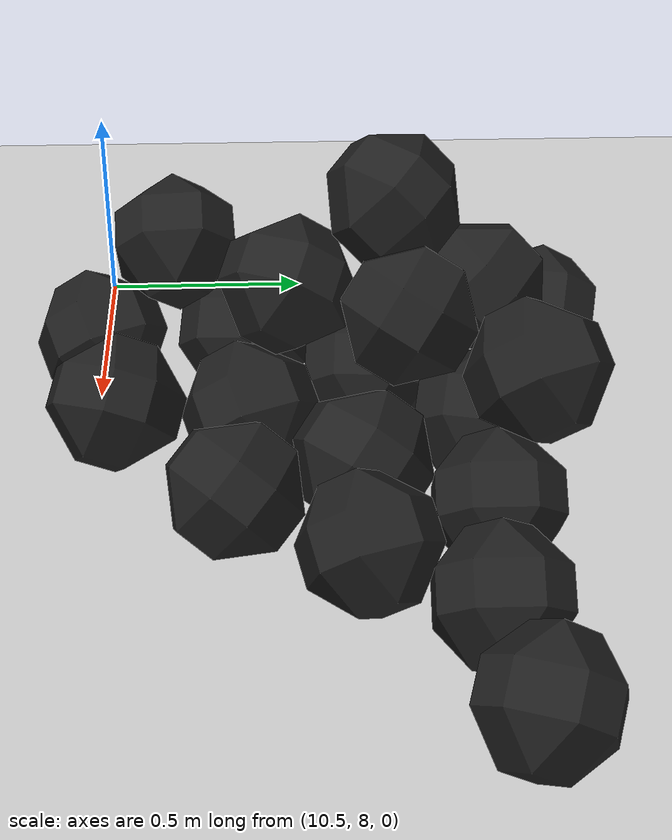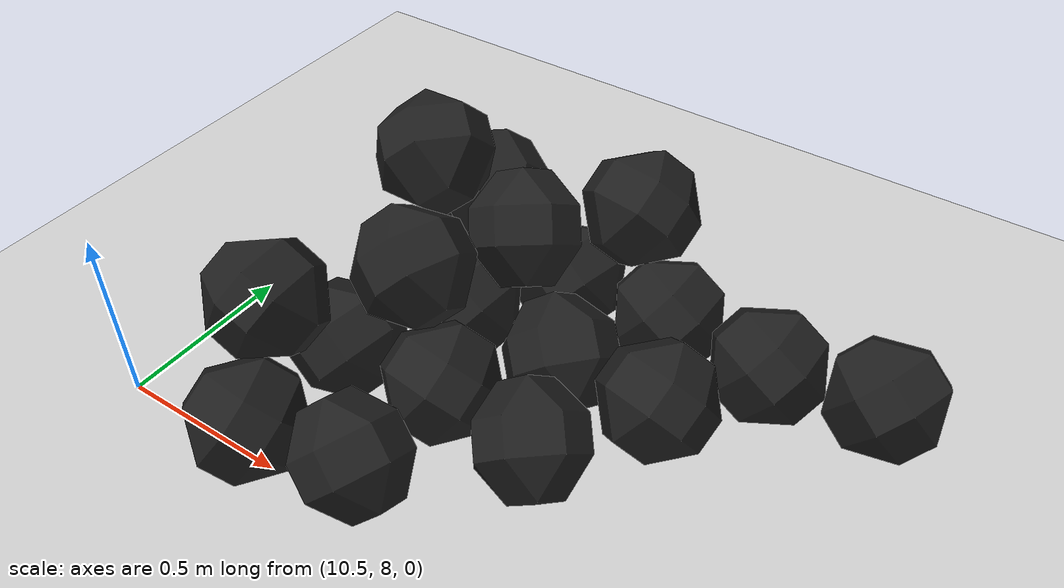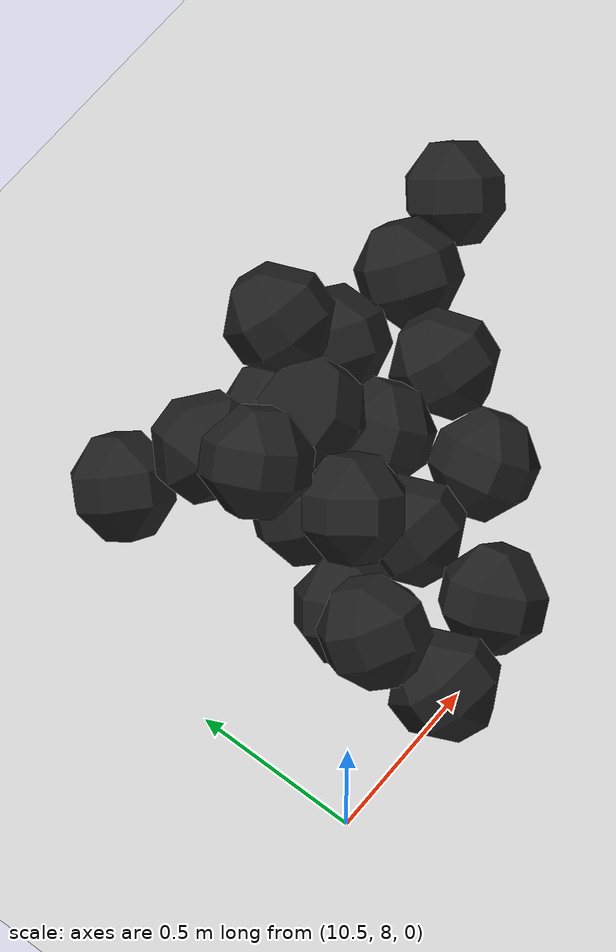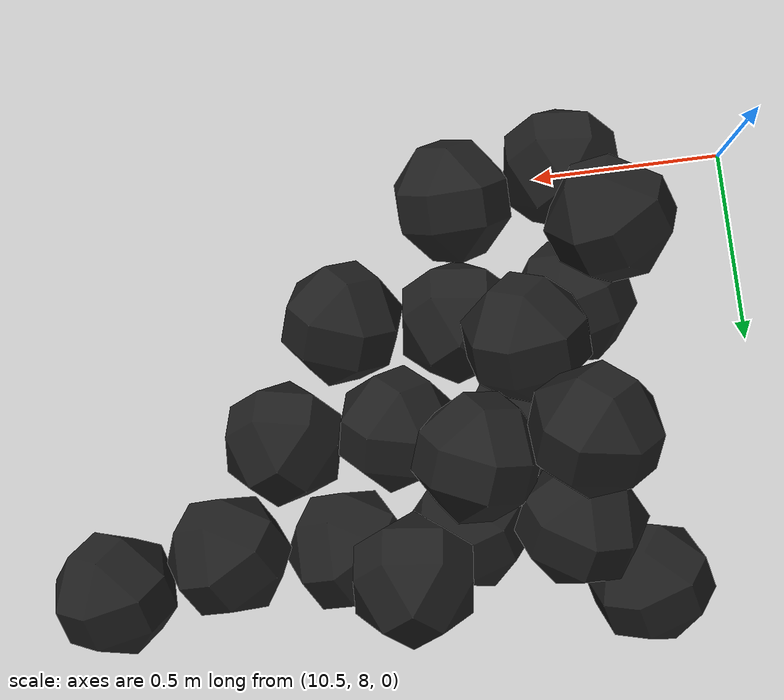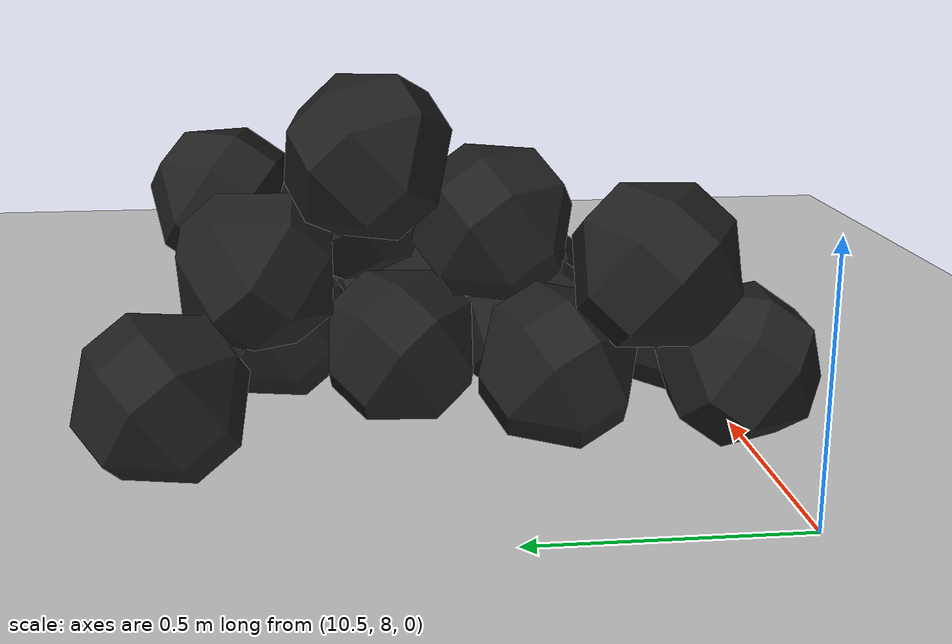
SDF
<sdf version="1.7">
 <world name="default">
  <model name="ground_plane">
   <static>1</static>
   <link name="link">
    <collision name="collision">
     <geometry><plane><normal>0 0 1</normal><size>100 100</size></plane></geometry>
     <surface><friction><ode><mu>100</mu><mu2>50</mu2></ode></friction></surface>
    </collision>
    <visual name="visual">
     <cast_shadows>0</cast_shadows>
     <geometry><plane><normal>0 0 1</normal><size>100 100</size></plane></geometry>
     <material>
      <script><uri>file://media/materials/scripts/gazebo.material</uri><name>Gazebo/Grey</name></script>
     </material>
    </visual>
   </link>
  </model>
  <model name="haoduomiantiaa_0">
   <link name="link_0">
    <inertial>
     <mass>0.2</mass>
     <inertia>
      <ixx>0.166667</ixx>
      <ixy>0</ixy>
      <ixz>0</ixz>
      <iyy>0.166667</iyy>
      <iyz>0</iyz>
      <izz>0.166667</izz>
     </inertia>
    </inertial>
    <visual name="visual">
     <geometry>
      <mesh>
       <uri>/home/lihaoyang/catkin_ws/src/pudong_gazebo/world/stl/haoduomianti.stl</uri>
       <scale>1 1 1</scale>
      </mesh>
     </geometry>
     <material>
      <lighting>1</lighting>
      <script><uri>file://media/materials/scripts/gazebo.material</uri><name>Gazebo/Black</name></script>
      <shader type="pixel"><normal_map>__default__</normal_map></shader>
      <ambient>0.3 0.3 0.3 1</ambient>
      <diffuse>0.7 0.7 0.7 1</diffuse>
      <specular>0.01 0.01 0.01 1</specular>
      <emissive>0 0 0 1</emissive>
     </material>
    </visual>
    <collision name="collision">
     <geometry>
      <mesh>
       <uri>/home/lihaoyang/catkin_ws/src/pudong_gazebo/world/stl/haoduomianti.stl</uri>
       <scale>1 1 1</scale>
      </mesh>
     </geometry>
     <surface>
      <friction>
       <ode><mu>1</mu><mu2>1</mu2><fdir1>0 0 0</fdir1><slip1>0</slip1><slip2>0</slip2></ode>
       <torsional>
        <coefficient>1</coefficient>
        <patch_radius>0</patch_radius>
        <surface_radius>0</surface_radius>
        <use_patch_radius>1</use_patch_radius>
        <ode><slip>0</slip></ode>
       </torsional>
      </friction>
      <bounce><restitution_coefficient>0</restitution_coefficient><threshold>1e+06</threshold></bounce>
      <contact>
       <collide_without_contact>0</collide_without_contact>
       <collide_without_contact_bitmask>1</collide_without_contact_bitmask>
       <collide_bitmask>1</collide_bitmask>
       <ode>
        <soft_cfm>0</soft_cfm>
        <soft_erp>0.2</soft_erp>
        <kp>1e+13</kp>
        <kd>1</kd>
        <max_vel>0.01</max_vel>
        <min_depth>0</min_depth>
       </ode>
       <bullet>
        <split_impulse>1</split_impulse>
        <split_impulse_penetration_threshold>-0.01</split_impulse_penetration_threshold>
        <soft_cfm>0</soft_cfm>
        <soft_erp>0.2</soft_erp>
        <kp>1e+13</kp>
        <kd>1</kd>
       </bullet>
      </contact>
     </surface>
    </collision>
   </link>
   <static>0</static>
   <pose>10.8647 9.09379 -0.115476 0.785212 -0.615494 -1.26195</pose>
  </model>
  <model name="haoduomiantiaa_3">
   <link name="link_0">
    <inertial>
     <mass>0.2</mass>
     <inertia>
      <ixx>0.166667</ixx>
      <ixy>0</ixy>
      <ixz>0</ixz>
      <iyy>0.166667</iyy>
      <iyz>0</iyz>
      <izz>0.166667</izz>
     </inertia>
    </inertial>
    <visual name="visual">
     <geometry>
      <mesh>
       <uri>/home/lihaoyang/catkin_ws/src/pudong_gazebo/world/stl/haoduomianti.stl</uri>
       <scale>1 1 1</scale>
      </mesh>
     </geometry>
     <material>
      <lighting>1</lighting>
      <script><uri>file://media/materials/scripts/gazebo.material</uri><name>Gazebo/Black</name></script>
      <shader type="pixel"><normal_map>__default__</normal_map></shader>
      <ambient>0.3 0.3 0.3 1</ambient>
      <diffuse>0.7 0.7 0.7 1</diffuse>
      <specular>0.01 0.01 0.01 1</specular>
      <emissive>0 0 0 1</emissive>
     </material>
    </visual>
    <collision name="collision">
     <geometry>
      <mesh>
       <uri>/home/lihaoyang/catkin_ws/src/pudong_gazebo/world/stl/haoduomianti.stl</uri>
       <scale>1 1 1</scale>
      </mesh>
     </geometry>
     <surface>
      <friction>
       <ode><mu>1</mu><mu2>1</mu2><fdir1>0 0 0</fdir1><slip1>0</slip1><slip2>0</slip2></ode>
       <torsional>
        <coefficient>1</coefficient>
        <patch_radius>0</patch_radius>
        <surface_radius>0</surface_radius>
        <use_patch_radius>1</use_patch_radius>
        <ode><slip>0</slip></ode>
       </torsional>
      </friction>
      <bounce><restitution_coefficient>0</restitution_coefficient><threshold>1e+06</threshold></bounce>
      <contact>
       <collide_without_contact>0</collide_without_contact>
       <collide_without_contact_bitmask>1</collide_without_contact_bitmask>
       <collide_bitmask>1</collide_bitmask>
       <ode>
        <soft_cfm>0</soft_cfm>
        <soft_erp>0.2</soft_erp>
        <kp>1e+13</kp>
        <kd>1</kd>
        <max_vel>0.01</max_vel>
        <min_depth>0</min_depth>
       </ode>
       <bullet>
        <split_impulse>1</split_impulse>
        <split_impulse_penetration_threshold>-0.01</split_impulse_penetration_threshold>
        <soft_cfm>0</soft_cfm>
        <soft_erp>0.2</soft_erp>
        <kp>1e+13</kp>
        <kd>1</kd>
       </bullet>
      </contact>
     </surface>
    </collision>
   </link>
   <static>0</static>
   <pose>10.9475 8.39888 -0.107146 0.785552 -0.449777 -1.29732</pose>
  </model>
  <model name="haoduomiantiaa_5">
   <link name="link_0">
    <inertial>
     <mass>0.2</mass>
     <inertia>
      <ixx>0.166667</ixx>
      <ixy>0</ixy>
      <ixz>0</ixz>
      <iyy>0.166667</iyy>
      <iyz>0</iyz>
      <izz>0.166667</izz>
     </inertia>
    </inertial>
    <visual name="visual">
     <geometry>
      <mesh>
       <uri>/home/lihaoyang/catkin_ws/src/pudong_gazebo/world/stl/haoduomianti.stl</uri>
       <scale>1 1 1</scale>
      </mesh>
     </geometry>
     <material>
      <lighting>1</lighting>
      <script><uri>file://media/materials/scripts/gazebo.material</uri><name>Gazebo/Black</name></script>
      <shader type="pixel"><normal_map>__default__</normal_map></shader>
      <ambient>0.3 0.3 0.3 1</ambient>
      <diffuse>0.7 0.7 0.7 1</diffuse>
      <specular>0.01 0.01 0.01 1</specular>
      <emissive>0 0 0 1</emissive>
     </material>
    </visual>
    <collision name="collision">
     <geometry>
      <mesh>
       <uri>/home/lihaoyang/catkin_ws/src/pudong_gazebo/world/stl/haoduomianti.stl</uri>
       <scale>1 1 1</scale>
      </mesh>
     </geometry>
     <surface>
      <friction>
       <ode><mu>1</mu><mu2>1</mu2><fdir1>0 0 0</fdir1><slip1>0</slip1><slip2>0</slip2></ode>
       <torsional>
        <coefficient>1</coefficient>
        <patch_radius>0</patch_radius>
        <surface_radius>0</surface_radius>
        <use_patch_radius>1</use_patch_radius>
        <ode><slip>0</slip></ode>
       </torsional>
      </friction>
      <bounce><restitution_coefficient>0</restitution_coefficient><threshold>1e+06</threshold></bounce>
      <contact>
       <collide_without_contact>0</collide_without_contact>
       <collide_without_contact_bitmask>1</collide_without_contact_bitmask>
       <collide_bitmask>1</collide_bitmask>
       <ode>
        <soft_cfm>0</soft_cfm>
        <soft_erp>0.2</soft_erp>
        <kp>1e+13</kp>
        <kd>1</kd>
        <max_vel>0.01</max_vel>
        <min_depth>0</min_depth>
       </ode>
       <bullet>
        <split_impulse>1</split_impulse>
        <split_impulse_penetration_threshold>-0.01</split_impulse_penetration_threshold>
        <soft_cfm>0</soft_cfm>
        <soft_erp>0.2</soft_erp>
        <kp>1e+13</kp>
        <kd>1</kd>
       </bullet>
      </contact>
     </surface>
    </collision>
   </link>
   <static>0</static>
   <pose>11.4515 9.00337 0.124834 0.780246 -0.643178 -2.73617</pose>
  </model>
  <model name="haoduomiantiaa_10">
   <link name="link_0">
    <inertial>
     <mass>0.2</mass>
     <inertia>
      <ixx>0.166667</ixx>
      <ixy>0</ixy>
      <ixz>0</ixz>
      <iyy>0.166667</iyy>
      <iyz>0</iyz>
      <izz>0.166667</izz>
     </inertia>
    </inertial>
    <visual name="visual">
     <geometry>
      <mesh>
       <uri>/home/lihaoyang/catkin_ws/src/pudong_gazebo/world/stl/haoduomianti.stl</uri>
       <scale>1 1 1</scale>
      </mesh>
     </geometry>
     <material>
      <lighting>1</lighting>
      <script><uri>file://media/materials/scripts/gazebo.material</uri><name>Gazebo/Black</name></script>
      <shader type="pixel"><normal_map>__default__</normal_map></shader>
      <ambient>0.3 0.3 0.3 1</ambient>
      <diffuse>0.7 0.7 0.7 1</diffuse>
      <specular>0.01 0.01 0.01 1</specular>
      <emissive>0 0 0 1</emissive>
     </material>
    </visual>
    <collision name="collision">
     <geometry>
      <mesh>
       <uri>/home/lihaoyang/catkin_ws/src/pudong_gazebo/world/stl/haoduomianti.stl</uri>
       <scale>1 1 1</scale>
      </mesh>
     </geometry>
     <surface>
      <friction>
       <ode><mu>1</mu><mu2>1</mu2><fdir1>0 0 0</fdir1><slip1>0</slip1><slip2>0</slip2></ode>
       <torsional>
        <coefficient>1</coefficient>
        <patch_radius>0</patch_radius>
        <surface_radius>0</surface_radius>
        <use_patch_radius>1</use_patch_radius>
        <ode><slip>0</slip></ode>
       </torsional>
      </friction>
      <bounce><restitution_coefficient>0</restitution_coefficient><threshold>1e+06</threshold></bounce>
      <contact>
       <collide_without_contact>0</collide_without_contact>
       <collide_without_contact_bitmask>1</collide_without_contact_bitmask>
       <collide_bitmask>1</collide_bitmask>
       <ode>
        <soft_cfm>0</soft_cfm>
        <soft_erp>0.2</soft_erp>
        <kp>1e+13</kp>
        <kd>1</kd>
        <max_vel>0.01</max_vel>
        <min_depth>0</min_depth>
       </ode>
       <bullet>
        <split_impulse>1</split_impulse>
        <split_impulse_penetration_threshold>-0.01</split_impulse_penetration_threshold>
        <soft_cfm>0</soft_cfm>
        <soft_erp>0.2</soft_erp>
        <kp>1e+13</kp>
        <kd>1</kd>
       </bullet>
      </contact>
     </surface>
    </collision>
   </link>
   <static>0</static>
   <pose>11.5562 8.3401 -0.115455 0.785112 -0.615449 -1.91731</pose>
  </model>
  <model name="haoduomiantiaa_14">
   <link name="link_0">
    <inertial>
     <mass>0.2</mass>
     <inertia>
      <ixx>0.166667</ixx>
      <ixy>0</ixy>
      <ixz>0</ixz>
      <iyy>0.166667</iyy>
      <iyz>0</iyz>
      <izz>0.166667</izz>
     </inertia>
    </inertial>
    <visual name="visual">
     <geometry>
      <mesh>
       <uri>/home/lihaoyang/catkin_ws/src/pudong_gazebo/world/stl/haoduomianti.stl</uri>
       <scale>1 1 1</scale>
      </mesh>
     </geometry>
     <material>
      <lighting>1</lighting>
      <script><uri>file://media/materials/scripts/gazebo.material</uri><name>Gazebo/Black</name></script>
      <shader type="pixel"><normal_map>__default__</normal_map></shader>
      <ambient>0.3 0.3 0.3 1</ambient>
      <diffuse>0.7 0.7 0.7 1</diffuse>
      <specular>0.01 0.01 0.01 1</specular>
      <emissive>0 0 0 1</emissive>
     </material>
    </visual>
    <collision name="collision">
     <geometry>
      <mesh>
       <uri>/home/lihaoyang/catkin_ws/src/pudong_gazebo/world/stl/haoduomianti.stl</uri>
       <scale>1 1 1</scale>
      </mesh>
     </geometry>
     <surface>
      <friction>
       <ode><mu>1</mu><mu2>1</mu2><fdir1>0 0 0</fdir1><slip1>0</slip1><slip2>0</slip2></ode>
       <torsional>
        <coefficient>1</coefficient>
        <patch_radius>0</patch_radius>
        <surface_radius>0</surface_radius>
        <use_patch_radius>1</use_patch_radius>
        <ode><slip>0</slip></ode>
       </torsional>
      </friction>
      <bounce><restitution_coefficient>0</restitution_coefficient><threshold>1e+06</threshold></bounce>
      <contact>
       <collide_without_contact>0</collide_without_contact>
       <collide_without_contact_bitmask>1</collide_without_contact_bitmask>
       <collide_bitmask>1</collide_bitmask>
       <ode>
        <soft_cfm>0</soft_cfm>
        <soft_erp>0.2</soft_erp>
        <kp>1e+13</kp>
        <kd>1</kd>
        <max_vel>0.01</max_vel>
        <min_depth>0</min_depth>
       </ode>
       <bullet>
        <split_impulse>1</split_impulse>
        <split_impulse_penetration_threshold>-0.01</split_impulse_penetration_threshold>
        <soft_cfm>0</soft_cfm>
        <soft_erp>0.2</soft_erp>
        <kp>1e+13</kp>
        <kd>1</kd>
       </bullet>
      </contact>
     </surface>
    </collision>
   </link>
   <static>0</static>
   <pose>10.9447 8.0076 -0.115474 0.785532 -0.615536 -2.70264</pose>
  </model>
  <model name="haoduomiantiaa_19">
   <link name="link_0">
    <inertial>
     <mass>0.2</mass>
     <inertia>
      <ixx>0.166667</ixx>
      <ixy>0</ixy>
      <ixz>0</ixz>
      <iyy>0.166667</iyy>
      <iyz>0</iyz>
      <izz>0.166667</izz>
     </inertia>
    </inertial>
    <visual name="visual">
     <geometry>
      <mesh>
       <uri>/home/lihaoyang/catkin_ws/src/pudong_gazebo/world/stl/haoduomianti.stl</uri>
       <scale>1 1 1</scale>
      </mesh>
     </geometry>
     <material>
      <lighting>1</lighting>
      <script><uri>file://media/materials/scripts/gazebo.material</uri><name>Gazebo/Black</name></script>
      <shader type="pixel"><normal_map>__default__</normal_map></shader>
      <ambient>0.3 0.3 0.3 1</ambient>
      <diffuse>0.7 0.7 0.7 1</diffuse>
      <specular>0.01 0.01 0.01 1</specular>
      <emissive>0 0 0 1</emissive>
     </material>
    </visual>
    <collision name="collision">
     <geometry>
      <mesh>
       <uri>/home/lihaoyang/catkin_ws/src/pudong_gazebo/world/stl/haoduomianti.stl</uri>
       <scale>1 1 1</scale>
      </mesh>
     </geometry>
     <surface>
      <friction>
       <ode><mu>1</mu><mu2>1</mu2><fdir1>0 0 0</fdir1><slip1>0</slip1><slip2>0</slip2></ode>
       <torsional>
        <coefficient>1</coefficient>
        <patch_radius>0</patch_radius>
        <surface_radius>0</surface_radius>
        <use_patch_radius>1</use_patch_radius>
        <ode><slip>0</slip></ode>
       </torsional>
      </friction>
      <bounce><restitution_coefficient>0</restitution_coefficient><threshold>1e+06</threshold></bounce>
      <contact>
       <collide_without_contact>0</collide_without_contact>
       <collide_without_contact_bitmask>1</collide_without_contact_bitmask>
       <collide_bitmask>1</collide_bitmask>
       <ode>
        <soft_cfm>0</soft_cfm>
        <soft_erp>0.2</soft_erp>
        <kp>1e+13</kp>
        <kd>1</kd>
        <max_vel>0.01</max_vel>
        <min_depth>0</min_depth>
       </ode>
       <bullet>
        <split_impulse>1</split_impulse>
        <split_impulse_penetration_threshold>-0.01</split_impulse_penetration_threshold>
        <soft_cfm>0</soft_cfm>
        <soft_erp>0.2</soft_erp>
        <kp>1e+13</kp>
        <kd>1</kd>
       </bullet>
      </contact>
     </surface>
    </collision>
   </link>
   <static>0</static>
   <pose>11.1243 8.46724 0.135817 0.829782 -0.613816 -1.46743</pose>
  </model>
  <model name="haoduomiantiaa_22">
   <link name="link_0">
    <inertial>
     <mass>0.2</mass>
     <inertia>
      <ixx>0.166667</ixx>
      <ixy>0</ixy>
      <ixz>0</ixz>
      <iyy>0.166667</iyy>
      <iyz>0</iyz>
      <izz>0.166667</izz>
     </inertia>
    </inertial>
    <visual name="visual">
     <geometry>
      <mesh>
       <uri>/home/lihaoyang/catkin_ws/src/pudong_gazebo/world/stl/haoduomianti.stl</uri>
       <scale>1 1 1</scale>
      </mesh>
     </geometry>
     <material>
      <lighting>1</lighting>
      <script><uri>file://media/materials/scripts/gazebo.material</uri><name>Gazebo/Black</name></script>
      <shader type="pixel"><normal_map>__default__</normal_map></shader>
      <ambient>0.3 0.3 0.3 1</ambient>
      <diffuse>0.7 0.7 0.7 1</diffuse>
      <specular>0.01 0.01 0.01 1</specular>
      <emissive>0 0 0 1</emissive>
     </material>
    </visual>
    <collision name="collision">
     <geometry>
      <mesh>
       <uri>/home/lihaoyang/catkin_ws/src/pudong_gazebo/world/stl/haoduomianti.stl</uri>
       <scale>1 1 1</scale>
      </mesh>
     </geometry>
     <surface>
      <friction>
       <ode><mu>1</mu><mu2>1</mu2><fdir1>0 0 0</fdir1><slip1>0</slip1><slip2>0</slip2></ode>
       <torsional>
        <coefficient>1</coefficient>
        <patch_radius>0</patch_radius>
        <surface_radius>0</surface_radius>
        <use_patch_radius>1</use_patch_radius>
        <ode><slip>0</slip></ode>
       </torsional>
      </friction>
      <bounce><restitution_coefficient>0</restitution_coefficient><threshold>1e+06</threshold></bounce>
      <contact>
       <collide_without_contact>0</collide_without_contact>
       <collide_without_contact_bitmask>1</collide_without_contact_bitmask>
       <collide_bitmask>1</collide_bitmask>
       <ode>
        <soft_cfm>0</soft_cfm>
        <soft_erp>0.2</soft_erp>
        <kp>1e+13</kp>
        <kd>1</kd>
        <max_vel>0.01</max_vel>
        <min_depth>0</min_depth>
       </ode>
       <bullet>
        <split_impulse>1</split_impulse>
        <split_impulse_penetration_threshold>-0.01</split_impulse_penetration_threshold>
        <soft_cfm>0</soft_cfm>
        <soft_erp>0.2</soft_erp>
        <kp>1e+13</kp>
        <kd>1</kd>
       </bullet>
      </contact>
     </surface>
    </collision>
   </link>
   <static>0</static>
   <pose>11.6099 8.91858 -0.115078 0.785359 -0.605459 -1.05519</pose>
  </model>
  <model name="haoduomiantiaa_26">
   <link name="link_0">
    <inertial>
     <mass>0.2</mass>
     <inertia>
      <ixx>0.166667</ixx>
      <ixy>0</ixy>
      <ixz>0</ixz>
      <iyy>0.166667</iyy>
      <iyz>0</iyz>
      <izz>0.166667</izz>
     </inertia>
    </inertial>
    <visual name="visual">
     <geometry>
      <mesh>
       <uri>/home/lihaoyang/catkin_ws/src/pudong_gazebo/world/stl/haoduomianti.stl</uri>
       <scale>1 1 1</scale>
      </mesh>
     </geometry>
     <material>
      <lighting>1</lighting>
      <script><uri>file://media/materials/scripts/gazebo.material</uri><name>Gazebo/Black</name></script>
      <shader type="pixel"><normal_map>__default__</normal_map></shader>
      <ambient>0.3 0.3 0.3 1</ambient>
      <diffuse>0.7 0.7 0.7 1</diffuse>
      <specular>0.01 0.01 0.01 1</specular>
      <emissive>0 0 0 1</emissive>
     </material>
    </visual>
    <collision name="collision">
     <geometry>
      <mesh>
       <uri>/home/lihaoyang/catkin_ws/src/pudong_gazebo/world/stl/haoduomianti.stl</uri>
       <scale>1 1 1</scale>
      </mesh>
     </geometry>
     <surface>
      <friction>
       <ode><mu>1</mu><mu2>1</mu2><fdir1>0 0 0</fdir1><slip1>0</slip1><slip2>0</slip2></ode>
       <torsional>
        <coefficient>1</coefficient>
        <patch_radius>0</patch_radius>
        <surface_radius>0</surface_radius>
        <use_patch_radius>1</use_patch_radius>
        <ode><slip>0</slip></ode>
       </torsional>
      </friction>
      <bounce><restitution_coefficient>0</restitution_coefficient><threshold>1e+06</threshold></bounce>
      <contact>
       <collide_without_contact>0</collide_without_contact>
       <collide_without_contact_bitmask>1</collide_without_contact_bitmask>
       <collide_bitmask>1</collide_bitmask>
       <ode>
        <soft_cfm>0</soft_cfm>
        <soft_erp>0.2</soft_erp>
        <kp>1e+13</kp>
        <kd>1</kd>
        <max_vel>0.01</max_vel>
        <min_depth>0</min_depth>
       </ode>
       <bullet>
        <split_impulse>1</split_impulse>
        <split_impulse_penetration_threshold>-0.01</split_impulse_penetration_threshold>
        <soft_cfm>0</soft_cfm>
        <soft_erp>0.2</soft_erp>
        <kp>1e+13</kp>
        <kd>1</kd>
       </bullet>
      </contact>
     </surface>
    </collision>
   </link>
   <static>0</static>
   <pose>11.2419 8.79096 0.152885 0.730922 -0.844999 2.21028</pose>
  </model>
  <model name="haoduomiantiaa_50">
   <link name="link_0">
    <inertial>
     <mass>0.2</mass>
     <inertia>
      <ixx>0.166667</ixx>
      <ixy>0</ixy>
      <ixz>0</ixz>
      <iyy>0.166667</iyy>
      <iyz>0</iyz>
      <izz>0.166667</izz>
     </inertia>
    </inertial>
    <visual name="visual">
     <geometry>
      <mesh>
       <uri>/home/lihaoyang/catkin_ws/src/pudong_gazebo/world/stl/haoduomianti.stl</uri>
       <scale>1 1 1</scale>
      </mesh>
     </geometry>
     <material>
      <lighting>1</lighting>
      <script><uri>file://media/materials/scripts/gazebo.material</uri><name>Gazebo/Black</name></script>
      <shader type="pixel"><normal_map>__default__</normal_map></shader>
      <ambient>0.3 0.3 0.3 1</ambient>
      <diffuse>0.7 0.7 0.7 1</diffuse>
      <specular>0.01 0.01 0.01 1</specular>
      <emissive>0 0 0 1</emissive>
     </material>
    </visual>
    <collision name="collision">
     <geometry>
      <mesh>
       <uri>/home/lihaoyang/catkin_ws/src/pudong_gazebo/world/stl/haoduomianti.stl</uri>
       <scale>1 1 1</scale>
      </mesh>
     </geometry>
     <surface>
      <friction>
       <ode><mu>1</mu><mu2>1</mu2><fdir1>0 0 0</fdir1><slip1>0</slip1><slip2>0</slip2></ode>
       <torsional>
        <coefficient>1</coefficient>
        <patch_radius>0</patch_radius>
        <surface_radius>0</surface_radius>
        <use_patch_radius>1</use_patch_radius>
        <ode><slip>0</slip></ode>
       </torsional>
      </friction>
      <bounce><restitution_coefficient>0</restitution_coefficient><threshold>1e+06</threshold></bounce>
      <contact>
       <collide_without_contact>0</collide_without_contact>
       <collide_without_contact_bitmask>1</collide_without_contact_bitmask>
       <collide_bitmask>1</collide_bitmask>
       <ode>
        <soft_cfm>0</soft_cfm>
        <soft_erp>0.2</soft_erp>
        <kp>1e+13</kp>
        <kd>1</kd>
        <max_vel>0.01</max_vel>
        <min_depth>0</min_depth>
       </ode>
       <bullet>
        <split_impulse>1</split_impulse>
        <split_impulse_penetration_threshold>-0.01</split_impulse_penetration_threshold>
        <soft_cfm>0</soft_cfm>
        <soft_erp>0.2</soft_erp>
        <kp>1e+13</kp>
        <kd>1</kd>
       </bullet>
      </contact>
     </surface>
    </collision>
   </link>
   <static>0</static>
   <pose>12.2121 8.95043 -0.115488 0.785419 -0.615501 2.81541</pose>
  </model>
  <model name="haoduomiantiaa_59">
   <link name="link_0">
    <inertial>
     <mass>0.2</mass>
     <inertia>
      <ixx>0.166667</ixx>
      <ixy>0</ixy>
      <ixz>0</ixz>
      <iyy>0.166667</iyy>
      <iyz>0</iyz>
      <izz>0.166667</izz>
     </inertia>
    </inertial>
    <visual name="visual">
     <geometry>
      <mesh>
       <uri>/home/lihaoyang/catkin_ws/src/pudong_gazebo/world/stl/haoduomianti.stl</uri>
       <scale>1 1 1</scale>
      </mesh>
     </geometry>
     <material>
      <lighting>1</lighting>
      <script><uri>file://media/materials/scripts/gazebo.material</uri><name>Gazebo/Black</name></script>
      <shader type="pixel"><normal_map>__default__</normal_map></shader>
      <ambient>0.3 0.3 0.3 1</ambient>
      <diffuse>0.7 0.7 0.7 1</diffuse>
      <specular>0.01 0.01 0.01 1</specular>
      <emissive>0 0 0 1</emissive>
     </material>
    </visual>
    <collision name="collision">
     <geometry>
      <mesh>
       <uri>/home/lihaoyang/catkin_ws/src/pudong_gazebo/world/stl/haoduomianti.stl</uri>
       <scale>1 1 1</scale>
      </mesh>
     </geometry>
     <surface>
      <friction>
       <ode><mu>1</mu><mu2>1</mu2><fdir1>0 0 0</fdir1><slip1>0</slip1><slip2>0</slip2></ode>
       <torsional>
        <coefficient>1</coefficient>
        <patch_radius>0</patch_radius>
        <surface_radius>0</surface_radius>
        <use_patch_radius>1</use_patch_radius>
        <ode><slip>0</slip></ode>
       </torsional>
      </friction>
      <bounce><restitution_coefficient>0</restitution_coefficient><threshold>1e+06</threshold></bounce>
      <contact>
       <collide_without_contact>0</collide_without_contact>
       <collide_without_contact_bitmask>1</collide_without_contact_bitmask>
       <collide_bitmask>1</collide_bitmask>
       <ode>
        <soft_cfm>0</soft_cfm>
        <soft_erp>0.2</soft_erp>
        <kp>1e+13</kp>
        <kd>1</kd>
        <max_vel>0.01</max_vel>
        <min_depth>0</min_depth>
       </ode>
       <bullet>
        <split_impulse>1</split_impulse>
        <split_impulse_penetration_threshold>-0.01</split_impulse_penetration_threshold>
        <soft_cfm>0</soft_cfm>
        <soft_erp>0.2</soft_erp>
        <kp>1e+13</kp>
        <kd>1</kd>
       </bullet>
      </contact>
     </surface>
    </collision>
   </link>
   <static>0</static>
   <pose>10.9841 8.92703 0.076894 0.790141 -0.414405 -0.03143</pose>
  </model>
  <model name="haoduomiantiaa_79">
   <link name="link_0">
    <inertial>
     <mass>0.2</mass>
     <inertia>
      <ixx>0.166667</ixx>
      <ixy>0</ixy>
      <ixz>0</ixz>
      <iyy>0.166667</iyy>
      <iyz>0</iyz>
      <izz>0.166667</izz>
     </inertia>
    </inertial>
    <visual name="visual">
     <geometry>
      <mesh>
       <uri>/home/lihaoyang/catkin_ws/src/pudong_gazebo/world/stl/haoduomianti.stl</uri>
       <scale>1 1 1</scale>
      </mesh>
     </geometry>
     <material>
      <lighting>1</lighting>
      <script><uri>file://media/materials/scripts/gazebo.material</uri><name>Gazebo/Black</name></script>
      <shader type="pixel"><normal_map>__default__</normal_map></shader>
      <ambient>0.3 0.3 0.3 1</ambient>
      <diffuse>0.7 0.7 0.7 1</diffuse>
      <specular>0.01 0.01 0.01 1</specular>
      <emissive>0 0 0 1</emissive>
     </material>
    </visual>
    <collision name="collision">
     <geometry>
      <mesh>
       <uri>/home/lihaoyang/catkin_ws/src/pudong_gazebo/world/stl/haoduomianti.stl</uri>
       <scale>1 1 1</scale>
      </mesh>
     </geometry>
     <surface>
      <friction>
       <ode><mu>1</mu><mu2>1</mu2><fdir1>0 0 0</fdir1><slip1>0</slip1><slip2>0</slip2></ode>
       <torsional>
        <coefficient>1</coefficient>
        <patch_radius>0</patch_radius>
        <surface_radius>0</surface_radius>
        <use_patch_radius>1</use_patch_radius>
        <ode><slip>0</slip></ode>
       </torsional>
      </friction>
      <bounce><restitution_coefficient>0</restitution_coefficient><threshold>1e+06</threshold></bounce>
      <contact>
       <collide_without_contact>0</collide_without_contact>
       <collide_without_contact_bitmask>1</collide_without_contact_bitmask>
       <collide_bitmask>1</collide_bitmask>
       <ode>
        <soft_cfm>0</soft_cfm>
        <soft_erp>0.2</soft_erp>
        <kp>1e+13</kp>
        <kd>1</kd>
        <max_vel>0.01</max_vel>
        <min_depth>0</min_depth>
       </ode>
       <bullet>
        <split_impulse>1</split_impulse>
        <split_impulse_penetration_threshold>-0.01</split_impulse_penetration_threshold>
        <soft_cfm>0</soft_cfm>
        <soft_erp>0.2</soft_erp>
        <kp>1e+13</kp>
        <kd>1</kd>
       </bullet>
      </contact>
     </surface>
    </collision>
   </link>
   <static>0</static>
   <pose>11.2614 8.37363 -0.115623 0.78542 -0.615377 -0.646796</pose>
  </model>
  <model name="haoduomiantiaa_83">
   <link name="link_0">
    <inertial>
     <mass>0.2</mass>
     <inertia>
      <ixx>0.166667</ixx>
      <ixy>0</ixy>
      <ixz>0</ixz>
      <iyy>0.166667</iyy>
      <iyz>0</iyz>
      <izz>0.166667</izz>
     </inertia>
    </inertial>
    <visual name="visual">
     <geometry>
      <mesh>
       <uri>/home/lihaoyang/catkin_ws/src/pudong_gazebo/world/stl/haoduomianti.stl</uri>
       <scale>1 1 1</scale>
      </mesh>
     </geometry>
     <material>
      <lighting>1</lighting>
      <script><uri>file://media/materials/scripts/gazebo.material</uri><name>Gazebo/Black</name></script>
      <shader type="pixel"><normal_map>__default__</normal_map></shader>
      <ambient>0.3 0.3 0.3 1</ambient>
      <diffuse>0.7 0.7 0.7 1</diffuse>
      <specular>0.01 0.01 0.01 1</specular>
      <emissive>0 0 0 1</emissive>
     </material>
    </visual>
    <collision name="collision">
     <geometry>
      <mesh>
       <uri>/home/lihaoyang/catkin_ws/src/pudong_gazebo/world/stl/haoduomianti.stl</uri>
       <scale>1 1 1</scale>
      </mesh>
     </geometry>
     <surface>
      <friction>
       <ode><mu>1</mu><mu2>1</mu2><fdir1>0 0 0</fdir1><slip1>0</slip1><slip2>0</slip2></ode>
       <torsional>
        <coefficient>1</coefficient>
        <patch_radius>0</patch_radius>
        <surface_radius>0</surface_radius>
        <use_patch_radius>1</use_patch_radius>
        <ode><slip>0</slip></ode>
       </torsional>
      </friction>
      <bounce><restitution_coefficient>0</restitution_coefficient><threshold>1e+06</threshold></bounce>
      <contact>
       <collide_without_contact>0</collide_without_contact>
       <collide_without_contact_bitmask>1</collide_without_contact_bitmask>
       <collide_bitmask>1</collide_bitmask>
       <ode>
        <soft_cfm>0</soft_cfm>
        <soft_erp>0.2</soft_erp>
        <kp>1e+13</kp>
        <kd>1</kd>
        <max_vel>0.01</max_vel>
        <min_depth>0</min_depth>
       </ode>
       <bullet>
        <split_impulse>1</split_impulse>
        <split_impulse_penetration_threshold>-0.01</split_impulse_penetration_threshold>
        <soft_cfm>0</soft_cfm>
        <soft_erp>0.2</soft_erp>
        <kp>1e+13</kp>
        <kd>1</kd>
       </bullet>
      </contact>
     </surface>
    </collision>
   </link>
   <static>0</static>
   <pose>11.7434 8.6272 -0.11547 0.785399 -0.615477 1.37216</pose>
  </model>
  <model name="haoduomiantiaa_86">
   <link name="link_0">
    <inertial>
     <mass>0.2</mass>
     <inertia>
      <ixx>0.166667</ixx>
      <ixy>0</ixy>
      <ixz>0</ixz>
      <iyy>0.166667</iyy>
      <iyz>0</iyz>
      <izz>0.166667</izz>
     </inertia>
    </inertial>
    <visual name="visual">
     <geometry>
      <mesh>
       <uri>/home/lihaoyang/catkin_ws/src/pudong_gazebo/world/stl/haoduomianti.stl</uri>
       <scale>1 1 1</scale>
      </mesh>
     </geometry>
     <material>
      <lighting>1</lighting>
      <script><uri>file://media/materials/scripts/gazebo.material</uri><name>Gazebo/Black</name></script>
      <shader type="pixel"><normal_map>__default__</normal_map></shader>
      <ambient>0.3 0.3 0.3 1</ambient>
      <diffuse>0.7 0.7 0.7 1</diffuse>
      <specular>0.01 0.01 0.01 1</specular>
      <emissive>0 0 0 1</emissive>
     </material>
    </visual>
    <collision name="collision">
     <geometry>
      <mesh>
       <uri>/home/lihaoyang/catkin_ws/src/pudong_gazebo/world/stl/haoduomianti.stl</uri>
       <scale>1 1 1</scale>
      </mesh>
     </geometry>
     <surface>
      <friction>
       <ode><mu>1</mu><mu2>1</mu2><fdir1>0 0 0</fdir1><slip1>0</slip1><slip2>0</slip2></ode>
       <torsional>
        <coefficient>1</coefficient>
        <patch_radius>0</patch_radius>
        <surface_radius>0</surface_radius>
        <use_patch_radius>1</use_patch_radius>
        <ode><slip>0</slip></ode>
       </torsional>
      </friction>
      <bounce><restitution_coefficient>0</restitution_coefficient><threshold>1e+06</threshold></bounce>
      <contact>
       <collide_without_contact>0</collide_without_contact>
       <collide_without_contact_bitmask>1</collide_without_contact_bitmask>
       <collide_bitmask>1</collide_bitmask>
       <ode>
        <soft_cfm>0</soft_cfm>
        <soft_erp>0.2</soft_erp>
        <kp>1e+13</kp>
        <kd>1</kd>
        <max_vel>0.01</max_vel>
        <min_depth>0</min_depth>
       </ode>
       <bullet>
        <split_impulse>1</split_impulse>
        <split_impulse_penetration_threshold>-0.01</split_impulse_penetration_threshold>
        <soft_cfm>0</soft_cfm>
        <soft_erp>0.2</soft_erp>
        <kp>1e+13</kp>
        <kd>1</kd>
       </bullet>
      </contact>
     </surface>
    </collision>
   </link>
   <static>0</static>
   <pose>11.916 8.8929 -0.11525 0.785239 -0.609727 -1.05274</pose>
  </model>
  <model name="haoduomiantiaa_97">
   <link name="link_0">
    <inertial>
     <mass>0.2</mass>
     <inertia>
      <ixx>0.166667</ixx>
      <ixy>0</ixy>
      <ixz>0</ixz>
      <iyy>0.166667</iyy>
      <iyz>0</iyz>
      <izz>0.166667</izz>
     </inertia>
    </inertial>
    <visual name="visual">
     <geometry>
      <mesh>
       <uri>/home/lihaoyang/catkin_ws/src/pudong_gazebo/world/stl/haoduomianti.stl</uri>
       <scale>1 1 1</scale>
      </mesh>
     </geometry>
     <material>
      <lighting>1</lighting>
      <script><uri>file://media/materials/scripts/gazebo.material</uri><name>Gazebo/Black</name></script>
      <shader type="pixel"><normal_map>__default__</normal_map></shader>
      <ambient>0.3 0.3 0.3 1</ambient>
      <diffuse>0.7 0.7 0.7 1</diffuse>
      <specular>0.01 0.01 0.01 1</specular>
      <emissive>0 0 0 1</emissive>
     </material>
    </visual>
    <collision name="collision">
     <geometry>
      <mesh>
       <uri>/home/lihaoyang/catkin_ws/src/pudong_gazebo/world/stl/haoduomianti.stl</uri>
       <scale>1 1 1</scale>
      </mesh>
     </geometry>
     <surface>
      <friction>
       <ode><mu>1</mu><mu2>1</mu2><fdir1>0 0 0</fdir1><slip1>0</slip1><slip2>0</slip2></ode>
       <torsional>
        <coefficient>1</coefficient>
        <patch_radius>0</patch_radius>
        <surface_radius>0</surface_radius>
        <use_patch_radius>1</use_patch_radius>
        <ode><slip>0</slip></ode>
       </torsional>
      </friction>
      <bounce><restitution_coefficient>0</restitution_coefficient><threshold>1e+06</threshold></bounce>
      <contact>
       <collide_without_contact>0</collide_without_contact>
       <collide_without_contact_bitmask>1</collide_without_contact_bitmask>
       <collide_bitmask>1</collide_bitmask>
       <ode>
        <soft_cfm>0</soft_cfm>
        <soft_erp>0.2</soft_erp>
        <kp>1e+13</kp>
        <kd>1</kd>
        <max_vel>0.01</max_vel>
        <min_depth>0</min_depth>
       </ode>
       <bullet>
        <split_impulse>1</split_impulse>
        <split_impulse_penetration_threshold>-0.01</split_impulse_penetration_threshold>
        <soft_cfm>0</soft_cfm>
        <soft_erp>0.2</soft_erp>
        <kp>1e+13</kp>
        <kd>1</kd>
       </bullet>
      </contact>
     </surface>
    </collision>
   </link>
   <static>0</static>
   <pose>10.897 8.20691 0.10643 0.748986 -0.499949 -3.09325</pose>
  </model>
  <model name="haoduomiantiaa_100">
   <link name="link_0">
    <inertial>
     <mass>0.2</mass>
     <inertia>
      <ixx>0.166667</ixx>
      <ixy>0</ixy>
      <ixz>0</ixz>
      <iyy>0.166667</iyy>
      <iyz>0</iyz>
      <izz>0.166667</izz>
     </inertia>
    </inertial>
    <visual name="visual">
     <geometry>
      <mesh>
       <uri>/home/lihaoyang/catkin_ws/src/pudong_gazebo/world/stl/haoduomianti.stl</uri>
       <scale>1 1 1</scale>
      </mesh>
     </geometry>
     <material>
      <lighting>1</lighting>
      <script><uri>file://media/materials/scripts/gazebo.material</uri><name>Gazebo/Black</name></script>
      <shader type="pixel"><normal_map>__default__</normal_map></shader>
      <ambient>0.3 0.3 0.3 1</ambient>
      <diffuse>0.7 0.7 0.7 1</diffuse>
      <specular>0.01 0.01 0.01 1</specular>
      <emissive>0 0 0 1</emissive>
     </material>
    </visual>
    <collision name="collision">
     <geometry>
      <mesh>
       <uri>/home/lihaoyang/catkin_ws/src/pudong_gazebo/world/stl/haoduomianti.stl</uri>
       <scale>1 1 1</scale>
      </mesh>
     </geometry>
     <surface>
      <friction>
       <ode><mu>1</mu><mu2>1</mu2><fdir1>0 0 0</fdir1><slip1>0</slip1><slip2>0</slip2></ode>
       <torsional>
        <coefficient>1</coefficient>
        <patch_radius>0</patch_radius>
        <surface_radius>0</surface_radius>
        <use_patch_radius>1</use_patch_radius>
        <ode><slip>0</slip></ode>
       </torsional>
      </friction>
      <bounce><restitution_coefficient>0</restitution_coefficient><threshold>1e+06</threshold></bounce>
      <contact>
       <collide_without_contact>0</collide_without_contact>
       <collide_without_contact_bitmask>1</collide_without_contact_bitmask>
       <collide_bitmask>1</collide_bitmask>
       <ode>
        <soft_cfm>0</soft_cfm>
        <soft_erp>0.2</soft_erp>
        <kp>1e+13</kp>
        <kd>1</kd>
        <max_vel>0.01</max_vel>
        <min_depth>0</min_depth>
       </ode>
       <bullet>
        <split_impulse>1</split_impulse>
        <split_impulse_penetration_threshold>-0.01</split_impulse_penetration_threshold>
        <soft_cfm>0</soft_cfm>
        <soft_erp>0.2</soft_erp>
        <kp>1e+13</kp>
        <kd>1</kd>
       </bullet>
      </contact>
     </surface>
    </collision>
   </link>
   <static>0</static>
   <pose>11.1276 8.64803 -0.115522 0.785408 -0.615526 3.07206</pose>
  </model>
  <model name="haoduomiantiaa_101">
   <link name="link_0">
    <inertial>
     <mass>0.2</mass>
     <inertia>
      <ixx>0.166667</ixx>
      <ixy>0</ixy>
      <ixz>0</ixz>
      <iyy>0.166667</iyy>
      <iyz>0</iyz>
      <izz>0.166667</izz>
     </inertia>
    </inertial>
    <visual name="visual">
     <geometry>
      <mesh>
       <uri>/home/lihaoyang/catkin_ws/src/pudong_gazebo/world/stl/haoduomianti.stl</uri>
       <scale>1 1 1</scale>
      </mesh>
     </geometry>
     <material>
      <lighting>1</lighting>
      <script><uri>file://media/materials/scripts/gazebo.material</uri><name>Gazebo/Black</name></script>
      <shader type="pixel"><normal_map>__default__</normal_map></shader>
      <ambient>0.3 0.3 0.3 1</ambient>
      <diffuse>0.7 0.7 0.7 1</diffuse>
      <specular>0.01 0.01 0.01 1</specular>
      <emissive>0 0 0 1</emissive>
     </material>
    </visual>
    <collision name="collision">
     <geometry>
      <mesh>
       <uri>/home/lihaoyang/catkin_ws/src/pudong_gazebo/world/stl/haoduomianti.stl</uri>
       <scale>1 1 1</scale>
      </mesh>
     </geometry>
     <surface>
      <friction>
       <ode><mu>1</mu><mu2>1</mu2><fdir1>0 0 0</fdir1><slip1>0</slip1><slip2>0</slip2></ode>
       <torsional>
        <coefficient>1</coefficient>
        <patch_radius>0</patch_radius>
        <surface_radius>0</surface_radius>
        <use_patch_radius>1</use_patch_radius>
        <ode><slip>0</slip></ode>
       </torsional>
      </friction>
      <bounce><restitution_coefficient>0</restitution_coefficient><threshold>1e+06</threshold></bounce>
      <contact>
       <collide_without_contact>0</collide_without_contact>
       <collide_without_contact_bitmask>1</collide_without_contact_bitmask>
       <collide_bitmask>1</collide_bitmask>
       <ode>
        <soft_cfm>0</soft_cfm>
        <soft_erp>0.2</soft_erp>
        <kp>1e+13</kp>
        <kd>1</kd>
        <max_vel>0.01</max_vel>
        <min_depth>0</min_depth>
       </ode>
       <bullet>
        <split_impulse>1</split_impulse>
        <split_impulse_penetration_threshold>-0.01</split_impulse_penetration_threshold>
        <soft_cfm>0</soft_cfm>
        <soft_erp>0.2</soft_erp>
        <kp>1e+13</kp>
        <kd>1</kd>
       </bullet>
      </contact>
     </surface>
    </collision>
   </link>
   <static>0</static>
   <pose>11.0291 8.67136 0.295931 0.977549 -0.751305 -1.85861</pose>
  </model>
  <model name="haoduomiantiaa_108">
   <link name="link_0">
    <inertial>
     <mass>0.2</mass>
     <inertia>
      <ixx>0.166667</ixx>
      <ixy>0</ixy>
      <ixz>0</ixz>
      <iyy>0.166667</iyy>
      <iyz>0</iyz>
      <izz>0.166667</izz>
     </inertia>
    </inertial>
    <visual name="visual">
     <geometry>
      <mesh>
       <uri>/home/lihaoyang/catkin_ws/src/pudong_gazebo/world/stl/haoduomianti.stl</uri>
       <scale>1 1 1</scale>
      </mesh>
     </geometry>
     <material>
      <lighting>1</lighting>
      <script><uri>file://media/materials/scripts/gazebo.material</uri><name>Gazebo/Black</name></script>
      <shader type="pixel"><normal_map>__default__</normal_map></shader>
      <ambient>0.3 0.3 0.3 1</ambient>
      <diffuse>0.7 0.7 0.7 1</diffuse>
      <specular>0.01 0.01 0.01 1</specular>
      <emissive>0 0 0 1</emissive>
     </material>
    </visual>
    <collision name="collision">
     <geometry>
      <mesh>
       <uri>/home/lihaoyang/catkin_ws/src/pudong_gazebo/world/stl/haoduomianti.stl</uri>
       <scale>1 1 1</scale>
      </mesh>
     </geometry>
     <surface>
      <friction>
       <ode><mu>1</mu><mu2>1</mu2><fdir1>0 0 0</fdir1><slip1>0</slip1><slip2>0</slip2></ode>
       <torsional>
        <coefficient>1</coefficient>
        <patch_radius>0</patch_radius>
        <surface_radius>0</surface_radius>
        <use_patch_radius>1</use_patch_radius>
        <ode><slip>0</slip></ode>
       </torsional>
      </friction>
      <bounce><restitution_coefficient>0</restitution_coefficient><threshold>1e+06</threshold></bounce>
      <contact>
       <collide_without_contact>0</collide_without_contact>
       <collide_without_contact_bitmask>1</collide_without_contact_bitmask>
       <collide_bitmask>1</collide_bitmask>
       <ode>
        <soft_cfm>0</soft_cfm>
        <soft_erp>0.2</soft_erp>
        <kp>1e+13</kp>
        <kd>1</kd>
        <max_vel>0.01</max_vel>
        <min_depth>0</min_depth>
       </ode>
       <bullet>
        <split_impulse>1</split_impulse>
        <split_impulse_penetration_threshold>-0.01</split_impulse_penetration_threshold>
        <soft_cfm>0</soft_cfm>
        <soft_erp>0.2</soft_erp>
        <kp>1e+13</kp>
        <kd>1</kd>
       </bullet>
      </contact>
     </surface>
    </collision>
   </link>
   <static>0</static>
   <pose>11.4512 8.6288 -0.11547 0.785393 -0.615478 -1.7996</pose>
  </model>
  <model name="haoduomiantiaa_109">
   <link name="link_0">
    <inertial>
     <mass>0.2</mass>
     <inertia>
      <ixx>0.166667</ixx>
      <ixy>0</ixy>
      <ixz>0</ixz>
      <iyy>0.166667</iyy>
      <iyz>0</iyz>
      <izz>0.166667</izz>
     </inertia>
    </inertial>
    <visual name="visual">
     <geometry>
      <mesh>
       <uri>/home/lihaoyang/catkin_ws/src/pudong_gazebo/world/stl/haoduomianti.stl</uri>
       <scale>1 1 1</scale>
      </mesh>
     </geometry>
     <material>
      <lighting>1</lighting>
      <script><uri>file://media/materials/scripts/gazebo.material</uri><name>Gazebo/Black</name></script>
      <shader type="pixel"><normal_map>__default__</normal_map></shader>
      <ambient>0.3 0.3 0.3 1</ambient>
      <diffuse>0.7 0.7 0.7 1</diffuse>
      <specular>0.01 0.01 0.01 1</specular>
      <emissive>0 0 0 1</emissive>
     </material>
    </visual>
    <collision name="collision">
     <geometry>
      <mesh>
       <uri>/home/lihaoyang/catkin_ws/src/pudong_gazebo/world/stl/haoduomianti.stl</uri>
       <scale>1 1 1</scale>
      </mesh>
     </geometry>
     <surface>
      <friction>
       <ode><mu>1</mu><mu2>1</mu2><fdir1>0 0 0</fdir1><slip1>0</slip1><slip2>0</slip2></ode>
       <torsional>
        <coefficient>1</coefficient>
        <patch_radius>0</patch_radius>
        <surface_radius>0</surface_radius>
        <use_patch_radius>1</use_patch_radius>
        <ode><slip>0</slip></ode>
       </torsional>
      </friction>
      <bounce><restitution_coefficient>0</restitution_coefficient><threshold>1e+06</threshold></bounce>
      <contact>
       <collide_without_contact>0</collide_without_contact>
       <collide_without_contact_bitmask>1</collide_without_contact_bitmask>
       <collide_bitmask>1</collide_bitmask>
       <ode>
        <soft_cfm>0</soft_cfm>
        <soft_erp>0.2</soft_erp>
        <kp>1e+13</kp>
        <kd>1</kd>
        <max_vel>0.01</max_vel>
        <min_depth>0</min_depth>
       </ode>
       <bullet>
        <split_impulse>1</split_impulse>
        <split_impulse_penetration_threshold>-0.01</split_impulse_penetration_threshold>
        <soft_cfm>0</soft_cfm>
        <soft_erp>0.2</soft_erp>
        <kp>1e+13</kp>
        <kd>1</kd>
       </bullet>
      </contact>
     </surface>
    </collision>
   </link>
   <static>0</static>
   <pose>11.2329 8.1148 -0.104167 0.785371 -0.402298 -1.54258</pose>
  </model>
  <model name="haoduomiantiaa_122">
   <link name="link_0">
    <inertial>
     <mass>0.2</mass>
     <inertia>
      <ixx>0.166667</ixx>
      <ixy>0</ixy>
      <ixz>0</ixz>
      <iyy>0.166667</iyy>
      <iyz>0</iyz>
      <izz>0.166667</izz>
     </inertia>
    </inertial>
    <visual name="visual">
     <geometry>
      <mesh>
       <uri>/home/lihaoyang/catkin_ws/src/pudong_gazebo/world/stl/haoduomianti.stl</uri>
       <scale>1 1 1</scale>
      </mesh>
     </geometry>
     <material>
      <lighting>1</lighting>
      <script><uri>file://media/materials/scripts/gazebo.material</uri><name>Gazebo/Black</name></script>
      <shader type="pixel"><normal_map>__default__</normal_map></shader>
      <ambient>0.3 0.3 0.3 1</ambient>
      <diffuse>0.7 0.7 0.7 1</diffuse>
      <specular>0.01 0.01 0.01 1</specular>
      <emissive>0 0 0 1</emissive>
     </material>
    </visual>
    <collision name="collision">
     <geometry>
      <mesh>
       <uri>/home/lihaoyang/catkin_ws/src/pudong_gazebo/world/stl/haoduomianti.stl</uri>
       <scale>1 1 1</scale>
      </mesh>
     </geometry>
     <surface>
      <friction>
       <ode><mu>1</mu><mu2>1</mu2><fdir1>0 0 0</fdir1><slip1>0</slip1><slip2>0</slip2></ode>
       <torsional>
        <coefficient>1</coefficient>
        <patch_radius>0</patch_radius>
        <surface_radius>0</surface_radius>
        <use_patch_radius>1</use_patch_radius>
        <ode><slip>0</slip></ode>
       </torsional>
      </friction>
      <bounce><restitution_coefficient>0</restitution_coefficient><threshold>1e+06</threshold></bounce>
      <contact>
       <collide_without_contact>0</collide_without_contact>
       <collide_without_contact_bitmask>1</collide_without_contact_bitmask>
       <collide_bitmask>1</collide_bitmask>
       <ode>
        <soft_cfm>0</soft_cfm>
        <soft_erp>0.2</soft_erp>
        <kp>1e+13</kp>
        <kd>1</kd>
        <max_vel>0.01</max_vel>
        <min_depth>0</min_depth>
       </ode>
       <bullet>
        <split_impulse>1</split_impulse>
        <split_impulse_penetration_threshold>-0.01</split_impulse_penetration_threshold>
        <soft_cfm>0</soft_cfm>
        <soft_erp>0.2</soft_erp>
        <kp>1e+13</kp>
        <kd>1</kd>
       </bullet>
      </contact>
     </surface>
    </collision>
   </link>
   <static>0</static>
   <pose>11.3043 8.90276 -0.115534 0.785403 -0.615474 2.92686</pose>
  </model>
 </world>
</sdf>
